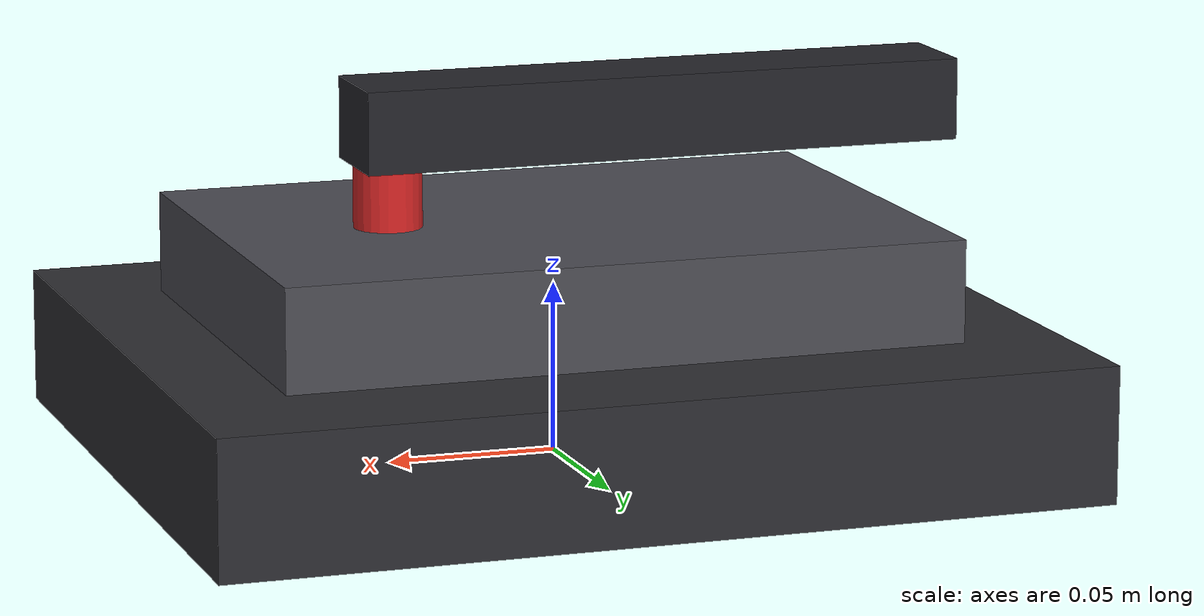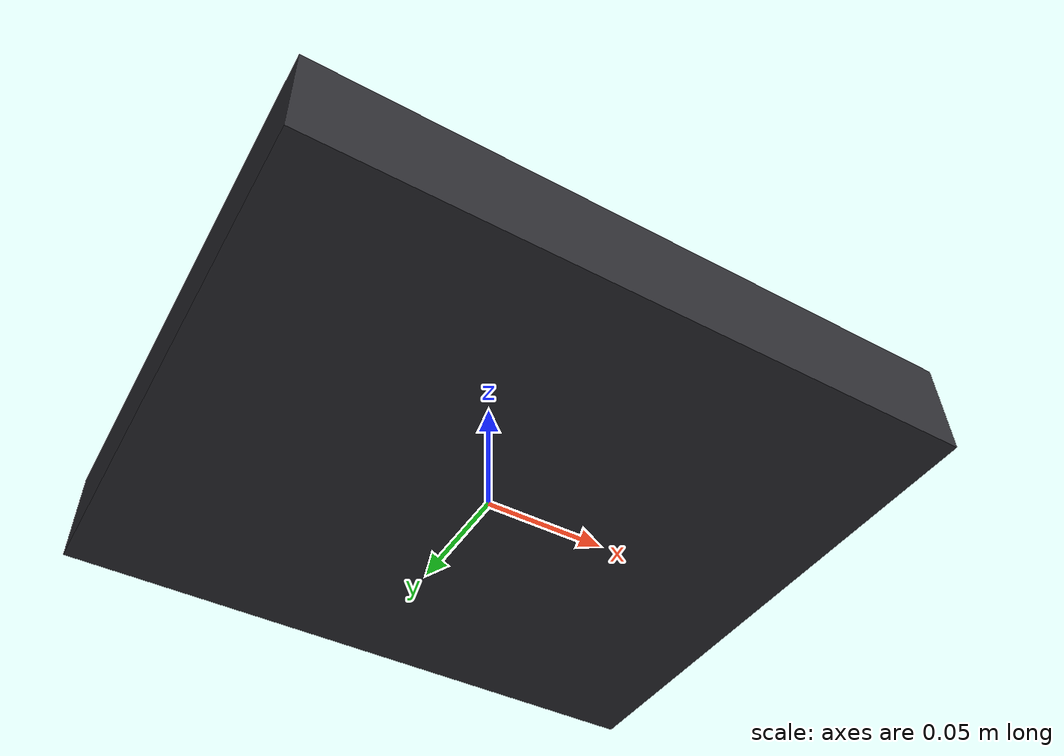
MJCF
<?xml version="1.0" encoding="utf-8"?>
<mujoco model="real_lab_kyushu_university_laser">
  <compiler angle="radian" autolimits="true"/>
  <default>
    <default class="body"><geom contype="1" conaffinity="1"/></default>
  </default>
  <worldbody>
    <body name="base">
      <geom type="box" size="0.13 0.11 0.02" pos="0 0 0.02" rgba="0.18 0.18 0.2 1" class="body"/>
      <geom type="box" size="0.1 0.07 0.015" pos="0 0 0.055" rgba="0.3 0.3 0.33 1" class="body"/>
      <body name="optics_arm" pos="-0.1 0.0 0.1">
        <joint name="optics_arm_joint" type="hinge" axis="0 0 1" range="-1.2 0" damping="0.5" frictionloss="0.2"/>
  <geom type="box" size="0.09 0.015 0.012" pos="0.07 0 0" rgba="0.15 0.15 0.17 1" class="body"/>
  <geom type="cylinder" size="0.01 0.025" pos="0.15 0 -0.02" rgba="0.85 0.15 0.15 1" class="body"/>
      </body>
    </body>
  </worldbody>
</mujoco>
